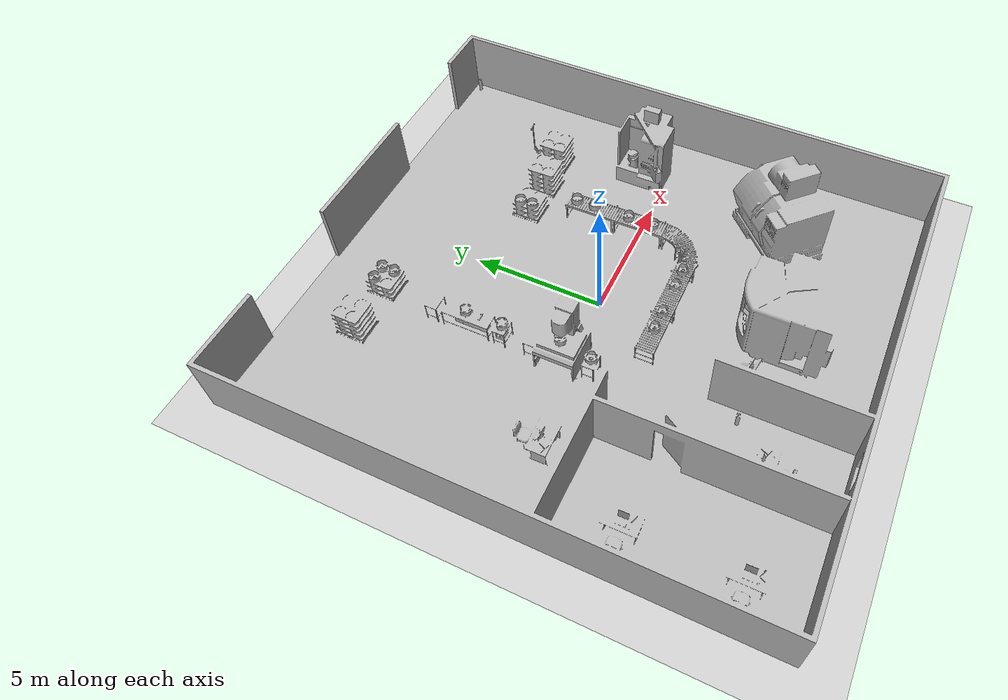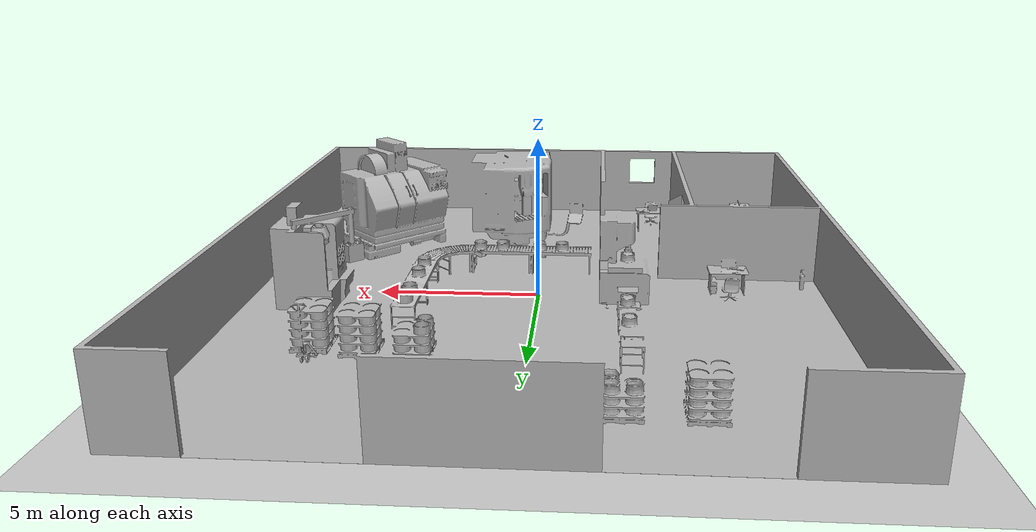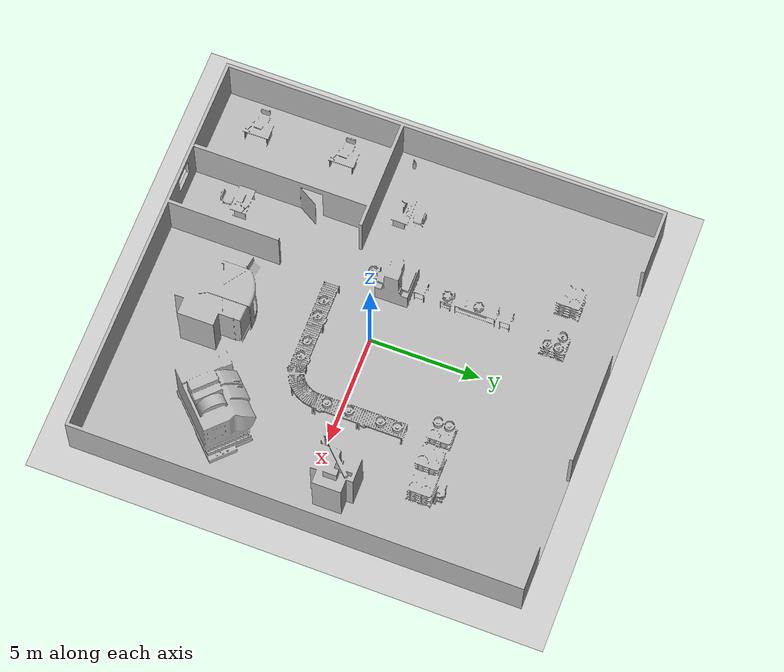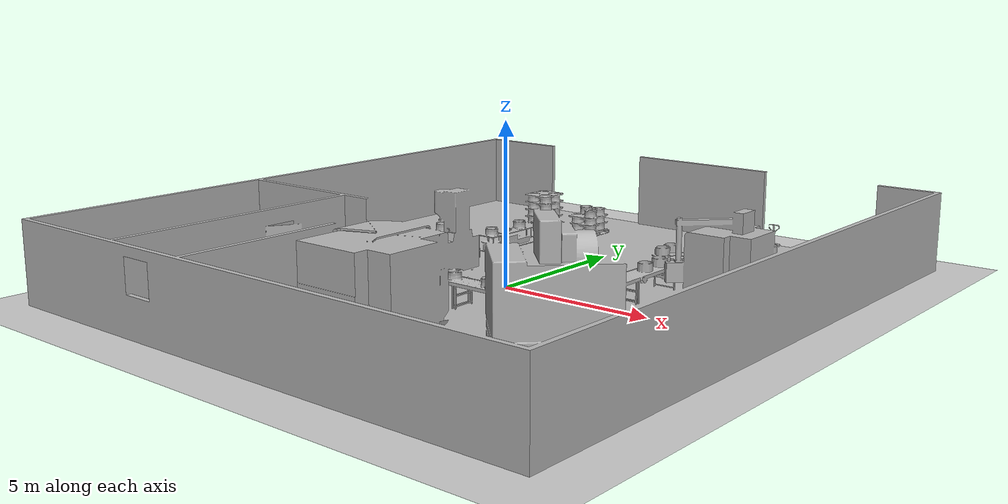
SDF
<sdf version="1.6">
 <world name="default">
  <light name="sun" type="directional">
   <cast_shadows>0</cast_shadows>
   <pose>0 0 10 0 -0 0</pose>
   <diffuse>0.8 0.8 0.8 1</diffuse>
   <specular>0.2 0.2 0.2 1</specular>
   <attenuation>
    <range>1000</range>
    <constant>0.9</constant>
    <linear>0.01</linear>
    <quadratic>0.001</quadratic>
   </attenuation>
   <direction>-0.5 0.1 -0.9</direction>
  </light>
  <scene><shadows>0</shadows><ambient>0.4 0.4 0.4 1</ambient><background>0.7 0.7 0.7 1</background></scene>
  <model name="ground_plane">
   <static>1</static>
   <link name="link">
    <collision name="collision">
     <geometry><plane><normal>0 0 1</normal><size>100 100</size></plane></geometry>
     <surface><friction><ode><mu>100</mu><mu2>50</mu2></ode></friction></surface>
    </collision>
    <visual name="visual">
     <cast_shadows>0</cast_shadows>
     <geometry><plane><normal>0 0 1</normal><size>100 100</size></plane></geometry>
     <material>
      <script><uri>file://media/materials/scripts/gazebo.material</uri><name>Gazebo/Grey</name></script>
     </material>
    </visual>
   </link>
  </model>
  <gravity>0 0 -9.8</gravity>
  <magnetic_field>6e-06 2.3e-05 -4.2e-05</magnetic_field>
  <atmosphere type="adiabatic"/>
  <physics name="default_physics" default="0" type="ode">
   <max_step_size>0.001</max_step_size>
   <real_time_factor>1</real_time_factor>
   <real_time_update_rate>1000</real_time_update_rate>
  </physics>
  <scene><ambient>0.4 0.4 0.4 1</ambient><background>0.7 0.7 0.7 1</background><shadows>1</shadows></scene>
  <spherical_coordinates>
   <surface_model>EARTH_WGS84</surface_model>
   <latitude_deg>0</latitude_deg>
   <longitude_deg>0</longitude_deg>
   <elevation>0</elevation>
   <heading_deg>0</heading_deg>
  </spherical_coordinates>
  <model name="industrial_shop_floor">
   <static>1</static>
   <link name="link">
    <visual name="visual">
     <geometry>
      <mesh><uri>model://industrial_shop_floor/meshes/industrial_shop_floor_new.obj</uri></mesh>
     </geometry>
    </visual>
    <collision name="visual">
     <geometry>
      <mesh><uri>model://industrial_shop_floor/meshes/industrial_shop_floor_new_collision.stl</uri></mesh>
     </geometry>
    </collision>
   </link>
  </model>
 </world>
</sdf>
